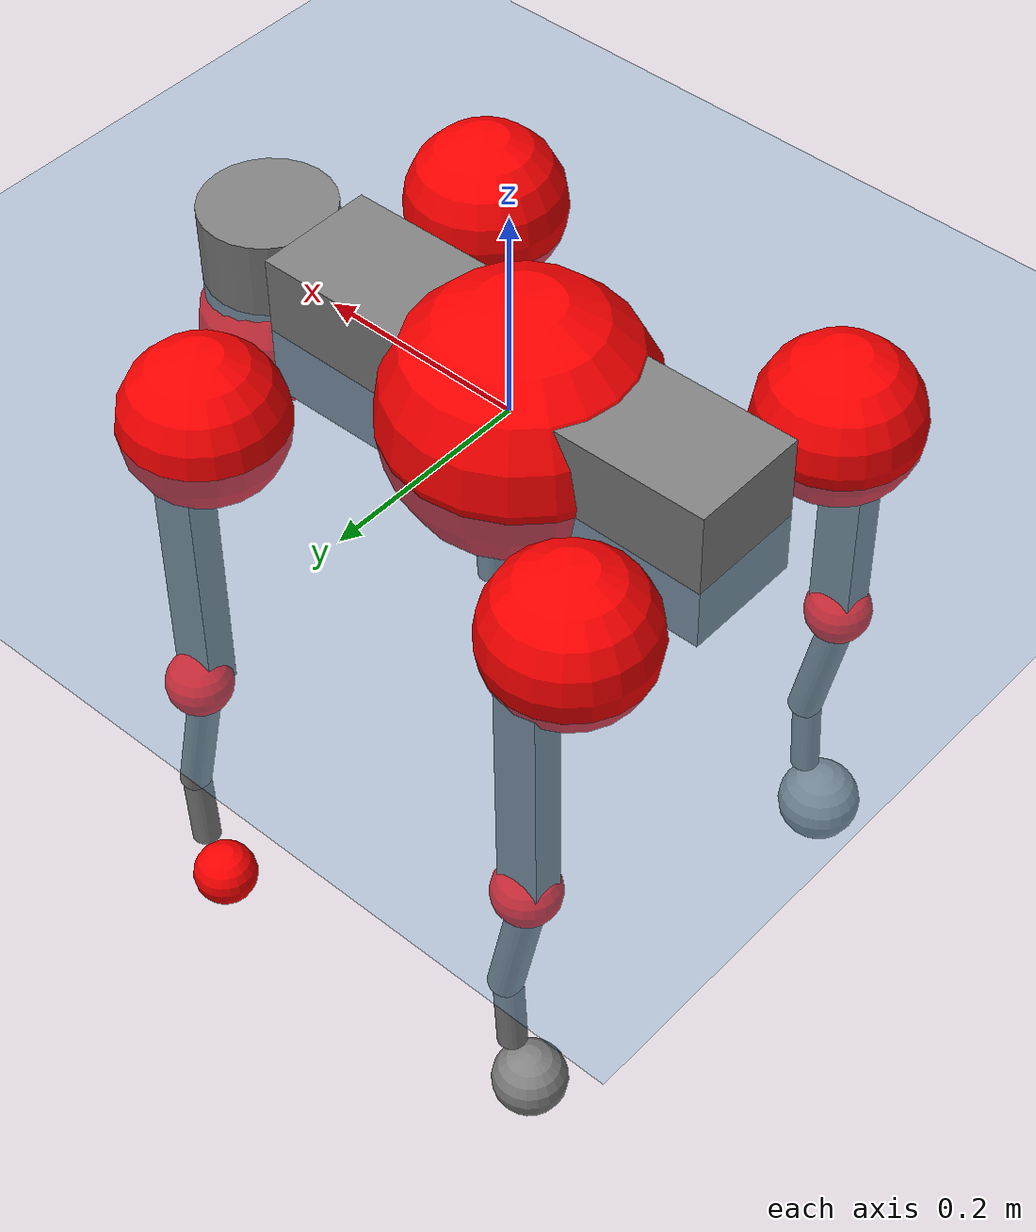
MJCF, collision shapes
<mujoco model="go2">
  <compiler angle="radian" assetdir="assets" balanceinertia="true" inertiafromgeom="false"/>

  <option timestep="0.005" density="1.2" viscosity="2e-05"/>

  <size nkey="1"/>

  <visual>
    <quality shadowsize="8192"/>
    <map shadowclip="0.5"/>
  </visual>

  <default>
    <default class="/">
      <geom contype="0" conaffinity="0" group="1" solref="-1000 -80"/>
      <site size="0.01 0.005 0.005" group="5"/>
      <general forcelimited="true" biastype="affine" gainprm="20" biasprm="0 -20 -0.5"/>
      <default class="go2">
        <joint armature="0.01" damping="0.01" frictionloss="0.2"/>
        <geom condim="1" margin="0.001"/>
        <default class="visual">
          <geom type="mesh" group="2"/>
        </default>
        <default class="collision">
          <geom group="3"/>
          <default class="foot">
            <geom size="0.022 0 0" condim="6" priority="1" friction="0.8 0.02 0.01" solimp="0.015 1 0.022"/>
          </default>
        </default>
        <default class="reward_collision_sphere">
          <geom group="5" rgba="1 0 0 1"/>
        </default>
      </default>
    </default>
  </default>

  <asset>
    <texture type="skybox" colorspace="auto" name="//unnamed_texture_0" builtin="gradient" rgb1="0.95 0.95 0.95" rgb2="0.95 0.95 0.95" width="100" height="600"/>
    <texture type="2d" colorspace="auto" name="texplane" builtin="checker" rgb1="0.345 0.575 0.748" rgb2="0.345 0.575 0.748" markrgb="1 1 1" width="512" height="512"/>
    <material name="MatPlane" class="/" texture="texplane" texuniform="true" texrepeat="2 2" specular="0.9"/>
    <material name="metal" class="/" rgba="0.9 0.95 0.95 1"/>
    <material name="black" class="/" rgba="0 0 0 1"/>
    <material name="white" class="/"/>
    <material name="gray" class="/" rgba="0.671705 0.692426 0.77427 1"/>
    <mesh name="base_0" class="/" file="base_0.obj"/>
    <mesh name="base_1" class="/" file="base_1.obj"/>
    <mesh name="base_2" class="/" file="base_2.obj"/>
    <mesh name="base_3" class="/" file="base_3.obj"/>
    <mesh name="base_4" class="/" file="base_4.obj"/>
    <mesh name="hip_0" class="/" file="hip_0.obj"/>
    <mesh name="hip_1" class="/" file="hip_1.obj"/>
    <mesh name="thigh_0" class="/" file="thigh_0.obj"/>
    <mesh name="thigh_1" class="/" file="thigh_1.obj"/>
    <mesh name="thigh_mirror_0" class="/" file="thigh_mirror_0.obj"/>
    <mesh name="thigh_mirror_1" class="/" file="thigh_mirror_1.obj"/>
    <mesh name="calf_0" class="/" file="calf_0.obj"/>
    <mesh name="calf_1" class="/" file="calf_1.obj"/>
    <mesh name="calf_mirror_0" class="/" file="calf_mirror_0.obj"/>
    <mesh name="calf_mirror_1" class="/" file="calf_mirror_1.obj"/>
    <mesh name="foot" class="/" file="foot.obj"/>
  </asset>

  <worldbody>
    <geom name="floor" class="/" size="100 100 0.125" type="plane" group="0" material="MatPlane"/>
    <light name="toplight_shadow" class="/" pos="0 0 5" dir="0.0990148 0.0990148 -0.990148" type="directional" ambient="0.04 0.04 0.04" diffuse="0.55 0.55 0.55" specular="0.12 0.12 0.12"/>
    <light name="toplight_fill" class="/" pos="0 0 5" dir="0.0990148 0.0990148 -0.990148" type="directional" castshadow="false" ambient="0.04 0.04 0.04" diffuse="0.3 0.3 0.3" specular="0.08 0.08 0.08"/>
    <body name="trunk" childclass="go2" pos="-0.0144599 0.000401598 0.00678331" quat="0.999979 -0.000682682 0.00646584 0.000121206">
      <inertial pos="0.0349656 -0.00645807 -0.00460459" quat="-0.00721746 0.716675 0.0075906 0.697328" mass="14.1337" diaginertia="0.101746 0.551339 0.064498"/>
      <joint name="//unnamed_joint_0" type="free" armature="0" damping="0" frictionloss="0"/>
      <geom name="//unnamed_geom_1" class="visual" material="black" mesh="base_0"/>
      <geom name="//unnamed_geom_2" class="visual" material="black" mesh="base_1"/>
      <geom name="//unnamed_geom_3" class="visual" material="black" mesh="base_2"/>
      <geom name="//unnamed_geom_4" class="visual" material="white" mesh="base_3"/>
      <geom name="//unnamed_geom_5" class="visual" material="gray" mesh="base_4"/>
      <geom name="trunk_1" class="collision" size="0.231482 0.057532 0.070146" type="box"/>
      <geom name="trunk_2" class="collision" size="0.0615316 0.0553784" pos="0.286427 0 0.0124998" type="cylinder"/>
      <geom name="trunk_3" class="collision" size="0.0578397" pos="0.294467 0 -0.0749988"/>
      <geom name="//unnamed_geom_9" class="reward_collision_sphere" size="0.123063"/>
      <geom name="//unnamed_geom_10" class="reward_collision_sphere" size="0.0738379" pos="0.281402 0 -0.0562491"/>
      <site name="imu" pos="-0.022466 -0.0385007 -0.00990401" size="0.0123063"/>
      <camera name="track" pos="0 -2.87382 0" quat="0.707107 0.707107 0 0" mode="trackcom"/>
      <camera name="ego_camera" pos="0.313562 0 0.0562491" quat="-0.5 -0.5 0.5 0.5"/>
      <body name="FL_hip" pos="0.194925 0.0709402 -0.00595168" quat="0.999995 -0.000316658 -0.00275862 -0.00178505">
        <inertial pos="-0.00848909 0.0127959 0.00151721" quat="0.493251 0.49906 0.506237 0.501365" mass="1.31727" diaginertia="0.000712619 0.00318607 0.00145706"/>
        <joint name="FL_hip_joint" pos="0 0 0" axis="0.997472 -0.00905641 0.0704823" stiffness="0.0270094" range="-1.32647 1.07038" armature="0.0132583" damping="0" frictionloss="0.261553"/>
        <geom name="//unnamed_geom_11" class="visual" material="metal" mesh="hip_0"/>
        <geom name="//unnamed_geom_12" class="visual" material="gray" mesh="hip_1"/>
        <geom name="//unnamed_geom_13" class="collision" size="0.056609 0.0246126" pos="0 0.114953 0" quat="0.707107 0.707107 0 0" type="cylinder"/>
        <geom name="//unnamed_geom_14" class="reward_collision_sphere" size="0.0738379" pos="0 0.100584 0"/>
        <body name="FL_thigh" pos="-0.00709751 0.136388 -0.00783327" quat="0.999983 0.004566 0.00181878 0.00315064">
          <inertial pos="-0.0135351 -0.0232029 -0.0280381" quat="0.828952 0.0853563 -0.0201228 0.552402" mass="2.42028" diaginertia="0.00625809 0.0400101 0.00245529"/>
          <joint name="FL_thigh_joint" pos="0 0 0" axis="0.025062 0.999679 0.00384501" stiffness="0.0737437" range="-1.69998 3.50523" armature="0.016245" damping="0.0118179" frictionloss="0.308782"/>
          <geom name="//unnamed_geom_15" class="visual" material="metal" mesh="thigh_0"/>
          <geom name="//unnamed_geom_16" class="visual" material="gray" mesh="thigh_1"/>
          <geom name="//unnamed_geom_17" class="collision" size="0.131062 0.0150752 0.0209207" pos="0 0 -0.133123" quat="0.707107 0 0.707107 0" type="box"/>
          <body name="FL_calf" pos="-0.00400745 0.0129572 -0.261757" quat="0.999991 0.00182518 0.00127984 0.00371198">
            <inertial pos="0.0175236 -0.00207962 -0.186004" quat="0.717003 -0.0226964 -0.0159392 0.696519" mass="0.433325" diaginertia="0.0013732 0.00649449 0.000124875"/>
            <joint name="FL_calf_joint" pos="0 0 0" axis="-0.0184356 0.999672 0.0177573" range="-2.46634 -0.840662" armature="0.00817714" damping="0.0674358" frictionloss="0.154664"/>
            <geom name="//unnamed_geom_18" class="visual" material="gray" mesh="calf_0"/>
            <geom name="//unnamed_geom_19" class="visual" material="black" mesh="calf_1"/>
            <geom name="FL_calf0" class="collision" size="0.0147676 0.0738379" pos="0.00804005 0 -0.0749988" quat="0.994493 0 -0.104807 0" type="cylinder"/>
            <geom name="//unnamed_geom_21" class="collision" size="0.0135369 0.0399955" pos="0.0201001 0 -0.184997" quat="0.999688 0 0.0249974 0" type="cylinder"/>
            <geom name="//unnamed_geom_22" class="visual" pos="0 0 -0.266246" quat="1 0 0 0" material="black" mesh="foot"/>
            <geom name="FL_foot" class="foot" size="0.0194598" pos="-0.00201001 0 -0.266246"/>
            <geom name="//unnamed_geom_24" class="reward_collision_sphere" size="0.0307658"/>
            <geom name="//unnamed_geom_25" class="reward_collision_sphere" size="0.0307658" pos="-0.00201001 0 -0.266246"/>
            <site name="FL_foot" class="foot" pos="-0.00201001 0 -0.266246" size="0.0123063"/>
          </body>
        </body>
      </body>
      <body name="FR_hip" pos="0.192908 -0.0711093 0.0131244" quat="0.999986 -0.00264115 0.00295939 0.0034765">
        <inertial pos="-0.0127762 0.00936201 -0.00168972" quat="0.454666 0.515331 0.494517 0.532132" mass="1.27645" diaginertia="0.0011236 0.00403059 0.00178905"/>
        <joint name="FR_hip_joint" pos="0 0 0" axis="0.999298 0.0349178 0.0135862" stiffness="0.0177691" range="-1.14684 1.06357" armature="0.00988327" damping="0.00496362" frictionloss="0.38907"/>
        <geom name="//unnamed_geom_26" class="visual" pos="0 1.62845e-09 6.98478e-08" quat="4.63268e-05 1 0 0" material="metal" mesh="hip_0"/>
        <geom name="//unnamed_geom_27" class="visual" pos="0 2.63992e-09 -1.7276e-07" quat="4.63268e-05 1 0 0" material="gray" mesh="hip_1"/>
        <geom name="//unnamed_geom_28" class="collision" size="0.056609 0.0246126" pos="0 -0.114953 0" quat="0.707107 0.707107 0 0" type="cylinder"/>
        <geom name="//unnamed_geom_29" class="reward_collision_sphere" size="0.0738379" pos="0 -0.100584 0"/>
        <body name="FR_thigh" pos="0.00037629 -0.122987 -0.00383336" quat="1 0.000191725 0.000108062 -0.000105847">
          <inertial pos="-0.0115843 0.042446 -0.0399657" quat="0.558077 0.0215525 0.0691028 0.826626" mass="2.08133" diaginertia="0.00669685 0.0412 0.00249986"/>
          <joint name="FR_thigh_joint" pos="0 0 0" axis="-0.00096314 -0.999998 0.00176233" stiffness="0.0400177" range="-3.46175 1.35055" armature="0.0118005" damping="0.0258067" frictionloss="0.167675"/>
          <geom name="//unnamed_geom_30" class="visual" material="metal" mesh="thigh_mirror_0"/>
          <geom name="//unnamed_geom_31" class="visual" material="gray" mesh="thigh_mirror_1"/>
          <geom name="//unnamed_geom_32" class="collision" size="0.131062 0.0150752 0.0209207" pos="0 0 -0.133123" quat="0.707107 0 0.707107 0" type="box"/>
          <body name="FR_calf" pos="0.00278632 0.0108889 -0.261475" quat="1 -0.000480303 -0.000175442 0.000343054">
            <inertial pos="0.00524376 0.000681453 -0.175874" quat="0.745409 -0.0095671 -0.00806835 0.66649" mass="0.451849" diaginertia="0.00151977 0.00906658 0.000183391"/>
            <joint name="FR_calf_joint" pos="0 0 0" axis="-0.0585222 -0.997714 0.0337914" stiffness="0.0591359" range="0.836554 2.52892" armature="0.0154338" damping="0" frictionloss="0.317907"/>
            <geom name="//unnamed_geom_33" class="visual" material="gray" mesh="calf_mirror_0"/>
            <geom name="//unnamed_geom_34" class="visual" material="black" mesh="calf_mirror_1"/>
            <geom name="FR_calf0" class="collision" size="0.0159982 0.0738379" pos="0.0100501 0 -0.0749988" quat="0.995004 0 -0.0998334 0" type="cylinder"/>
            <geom name="//unnamed_geom_36" class="collision" size="0.0135369 0.0399955" pos="0.0201001 0 -0.184997" quat="0.999688 0 0.0249974 0" type="cylinder"/>
            <geom name="//unnamed_geom_37" class="visual" pos="0 0 -0.266246" quat="1 0 0 0" material="black" mesh="foot"/>
            <geom name="FR_foot" class="foot" size="0.0313577" pos="-0.00201001 0 -0.266246"/>
            <geom name="//unnamed_geom_39" class="reward_collision_sphere" size="0.0307658"/>
            <geom name="//unnamed_geom_40" class="reward_collision_sphere" size="0.0307658" pos="-0.00201001 0 -0.266246"/>
            <site name="FR_foot" class="foot" pos="-0.00201001 0 -0.266246" size="0.0123063"/>
          </body>
        </body>
      </body>
      <body name="RL_hip" pos="-0.195887 0.068389 0.0102486" quat="1 0.000418008 0.000105062 0.000516117">
        <inertial pos="-8.62207e-05 -0.0107208 0.00998723" quat="0.48242 0.467532 0.558995 0.486014" mass="1.01443" diaginertia="0.000863969 0.00348736 0.00118657"/>
        <joint name="RL_hip_joint" pos="0 0 0" axis="-0.999977 -0.00511774 -0.00446397" range="-1.01469 1.21247" armature="0.0186308" damping="0.0254368" frictionloss="0.0943546"/>
        <geom name="//unnamed_geom_41" class="visual" pos="2.13411e-09 0 4.18335e-07" quat="4.63268e-05 0 1 0" material="metal" mesh="hip_0"/>
        <geom name="//unnamed_geom_42" class="visual" pos="3.45965e-09 0 3.71003e-07" quat="4.63268e-05 0 1 0" material="gray" mesh="hip_1"/>
        <geom name="//unnamed_geom_43" class="collision" size="0.056609 0.0246126" pos="0 0.114953 0" quat="0.707107 0.707107 0 0" type="cylinder"/>
        <geom name="//unnamed_geom_44" class="reward_collision_sphere" size="0.0738379" pos="0 0.100584 0"/>
        <body name="RL_thigh" pos="0.000696371 0.149181 -0.0122743" quat="1 -3.35446e-05 -0.000760153 8.60048e-05">
          <inertial pos="-0.00306333 -0.0336012 -0.043096" quat="0.842048 0.0782616 -0.00769367 0.53364" mass="1.69364" diaginertia="0.00580952 0.0330665 0.00226082"/>
          <joint name="RL_thigh_joint" pos="0 0 0" axis="-0.015647 0.999114 0.0390708" range="-0.528856 4.52361" armature="0.00641693" damping="0.0496638" frictionloss="0.251442"/>
          <geom name="//unnamed_geom_45" class="visual" material="metal" mesh="thigh_0"/>
          <geom name="//unnamed_geom_46" class="visual" material="gray" mesh="thigh_1"/>
          <geom name="//unnamed_geom_47" class="collision" size="0.131062 0.0150752 0.0209207" pos="0 0 -0.133123" quat="0.707107 0 0.707107 0" type="box"/>
          <body name="RL_calf" pos="0.00163805 0.000720015 -0.253175" quat="0.999999 0.000856334 -0.000953275 0.000629581">
            <inertial pos="0.0114609 -0.0149178 -0.177174" quat="0.694476 -0.0222104 -0.0228696 0.718809" mass="0.424313" diaginertia="0.00157266 0.00840456 0.000179238"/>
            <joint name="RL_calf_joint" pos="0 0 0" axis="0.00801546 0.999944 0.00685441" stiffness="0.0727148" range="-2.74021 -0.967268" armature="0.00784687" damping="0.0505086" frictionloss="0.077169"/>
            <geom name="//unnamed_geom_48" class="visual" material="gray" mesh="calf_0"/>
            <geom name="//unnamed_geom_49" class="visual" material="black" mesh="calf_1"/>
            <geom name="RL_calf0" class="collision" size="0.0159982 0.0738379" pos="0.0100501 0 -0.0749988" quat="0.995004 0 -0.0998334 0" type="cylinder"/>
            <geom name="//unnamed_geom_51" class="collision" size="0.0135369 0.0399955" pos="0.0201001 0 -0.184997" quat="0.999688 0 0.0249974 0" type="cylinder"/>
            <geom name="//unnamed_geom_52" class="visual" pos="0 0 -0.266246" quat="1 0 0 0" material="black" mesh="foot"/>
            <geom name="RL_foot" class="foot" size="0.0343746" pos="-0.00201001 0 -0.266246"/>
            <geom name="//unnamed_geom_54" class="reward_collision_sphere" size="0.0307658"/>
            <geom name="//unnamed_geom_55" class="reward_collision_sphere" size="0.0307658" pos="-0.00201001 0 -0.266246"/>
            <site name="RL_foot" class="foot" pos="-0.00201001 0 -0.266246" size="0.0123063"/>
          </body>
        </body>
      </body>
      <body name="RR_hip" pos="-0.199409 -0.0595175 0.00203722" quat="0.999977 -0.00412903 -0.00461373 -0.00262549">
        <inertial pos="-0.0083941 -0.0129325 0.0135909" quat="0.514379 0.524481 0.463464 0.495515" mass="1.29306" diaginertia="0.000910833 0.00368926 0.00150131"/>
        <joint name="RR_hip_joint" pos="0 0 0" axis="-0.997479 -0.0236203 -0.0669093" range="-1.15037 1.00695" armature="0.0168359" damping="0.0202586" frictionloss="0.214319"/>
        <geom name="//unnamed_geom_56" class="visual" pos="-2.11916e-09 1.62845e-09 3.48487e-07" quat="2.14617e-09 4.63268e-05 4.63268e-05 -1" material="metal" mesh="hip_0"/>
        <geom name="//unnamed_geom_57" class="visual" pos="-3.49663e-09 2.63992e-09 5.43764e-07" quat="2.14617e-09 4.63268e-05 4.63268e-05 -1" material="gray" mesh="hip_1"/>
        <geom name="//unnamed_geom_58" class="collision" size="0.056609 0.0246126" pos="0 -0.114953 0" quat="0.707107 0.707107 0 0" type="cylinder"/>
        <geom name="//unnamed_geom_59" class="reward_collision_sphere" size="0.0738379" pos="0 -0.100584 0"/>
        <body name="RR_thigh" pos="0.00382647 -0.13564 0.0138459" quat="0.999999 -0.000333338 -0.000402839 -0.000906021">
          <inertial pos="-0.00228825 0.0333317 -0.0400894" quat="0.551674 -0.0192402 0.0796072 0.830029" mass="2.47781" diaginertia="0.00630906 0.0319574 0.00274219"/>
          <joint name="RR_thigh_joint" pos="0 0 0" axis="-0.0103941 -0.999917 0.0076653" range="-4.51773 0.288071" armature="0.0129755" damping="0.000466482" frictionloss="0.213607"/>
          <geom name="//unnamed_geom_60" class="visual" material="metal" mesh="thigh_mirror_0"/>
          <geom name="//unnamed_geom_61" class="visual" material="gray" mesh="thigh_mirror_1"/>
          <geom name="//unnamed_geom_62" class="collision" size="0.131062 0.0150752 0.0209207" pos="0 0 -0.133123" quat="0.707107 0 0.707107 0" type="box"/>
          <body name="RR_calf" pos="-0.00174454 0.000697436 -0.273224" quat="1 0.000186908 4.12905e-05 -5.01453e-05">
            <inertial pos="0.0162848 -0.000502501 -0.177346" quat="0.67876 -0.0220328 -0.000385486 0.734029" mass="0.44534" diaginertia="0.0014012 0.00889793 0.000137386"/>
            <joint name="RR_calf_joint" pos="0 0 0" axis="0.0559207 -0.998011 0.0291059" range="0.943515 2.70251" armature="0.0147199" damping="0" frictionloss="0.293896"/>
            <geom name="//unnamed_geom_63" class="visual" material="gray" mesh="calf_mirror_0"/>
            <geom name="//unnamed_geom_64" class="visual" material="black" mesh="calf_mirror_1"/>
            <geom name="RR_calf0" class="collision" size="0.0159982 0.0738379" pos="0.0100501 0 -0.0749988" quat="0.995004 0 -0.0998334 0" type="cylinder"/>
            <geom name="//unnamed_geom_66" class="collision" size="0.0135369 0.0399955" pos="0.0201001 0 -0.184997" quat="0.999688 0 0.0249974 0" type="cylinder"/>
            <geom name="//unnamed_geom_67" class="visual" pos="0 0 -0.266246" quat="1 0 0 0" material="black" mesh="foot"/>
            <geom name="RR_foot" class="foot" size="0.038899" pos="-0.00201001 0 -0.266246"/>
            <geom name="//unnamed_geom_69" class="reward_collision_sphere" size="0.0307658"/>
            <geom name="//unnamed_geom_70" class="reward_collision_sphere" size="0.0307658" pos="-0.00201001 0 -0.266246"/>
            <site name="RR_foot" class="foot" pos="-0.00201001 0 -0.266246" size="0.0123063"/>
          </body>
        </body>
      </body>
    </body>
  </worldbody>

  <contact>
    <pair class="/" geom1="floor" geom2="FL_foot" name="//unnamed_contact_0"/>
    <pair class="/" geom1="floor" geom2="FR_foot" name="//unnamed_contact_1"/>
    <pair class="/" geom1="floor" geom2="RL_foot" name="//unnamed_contact_2"/>
    <pair class="/" geom1="floor" geom2="RR_foot" name="//unnamed_contact_3"/>
  </contact>

  <actuator>
    <general name="FL_hip" class="/" joint="FL_hip_joint" forcerange="-28.1731 28.1731" gainprm="19.684" biasprm="0 -19.684 -0.760876"/>
    <general name="FL_thigh" class="/" joint="FL_thigh_joint" forcerange="-37.3863 37.3863" gainprm="19.684" biasprm="0 -19.684 -0.760876"/>
    <general name="FL_calf" class="/" joint="FL_calf_joint" forcerange="-58.9789 58.9789" gainprm="19.684" biasprm="0 -19.684 -0.760876"/>
    <general name="FR_hip" class="/" joint="FR_hip_joint" forcerange="-28.9811 28.9811" gainprm="19.684" biasprm="0 -19.684 -0.760876"/>
    <general name="FR_thigh" class="/" joint="FR_thigh_joint" forcerange="-21.0723 21.0723" gainprm="19.684" biasprm="0 -19.684 -0.760876"/>
    <general name="FR_calf" class="/" joint="FR_calf_joint" forcerange="-52.6263 52.6263" gainprm="19.684" biasprm="0 -19.684 -0.760876"/>
    <general name="RL_hip" class="/" joint="RL_hip_joint" forcerange="-14.4691 14.4691" gainprm="19.684" biasprm="0 -19.684 -0.760876"/>
    <general name="RL_thigh" class="/" joint="RL_thigh_joint" forcerange="-36.9792 36.9792" gainprm="19.684" biasprm="0 -19.684 -0.760876"/>
    <general name="RL_calf" class="/" joint="RL_calf_joint" forcerange="-84.0959 84.0959" gainprm="19.684" biasprm="0 -19.684 -0.760876"/>
    <general name="RR_hip" class="/" joint="RR_hip_joint" forcerange="-39.2345 39.2345" gainprm="19.684" biasprm="0 -19.684 -0.760876"/>
    <general name="RR_thigh" class="/" joint="RR_thigh_joint" forcerange="-14.9413 14.9413" gainprm="19.684" biasprm="0 -19.684 -0.760876"/>
    <general name="RR_calf" class="/" joint="RR_calf_joint" forcerange="-52.6552 52.6552" gainprm="19.684" biasprm="0 -19.684 -0.760876"/>
  </actuator>

  <sensor>
    <gyro site="imu" name="imu_angular_velocity"/>
    <velocimeter site="imu" name="imu_linear_velocity"/>
    <framelinvel objtype="site" objname="FL_foot" name="FL_foot_global_linear_velocity"/>
    <framelinvel objtype="site" objname="FR_foot" name="FR_foot_global_linear_velocity"/>
    <framelinvel objtype="site" objname="RL_foot" name="RL_foot_global_linear_velocity"/>
    <framelinvel objtype="site" objname="RR_foot" name="RR_foot_global_linear_velocity"/>
  </sensor>

  <keyframe>
    <key name="home" qpos="0 0 0.325 1 0 0 0 0.1 0.8 -1.5 -0.1 -0.8 1.5 -0.1 0.8 -1.5 0.1 -0.8 1.5"/>
  </keyframe>
</mujoco>
